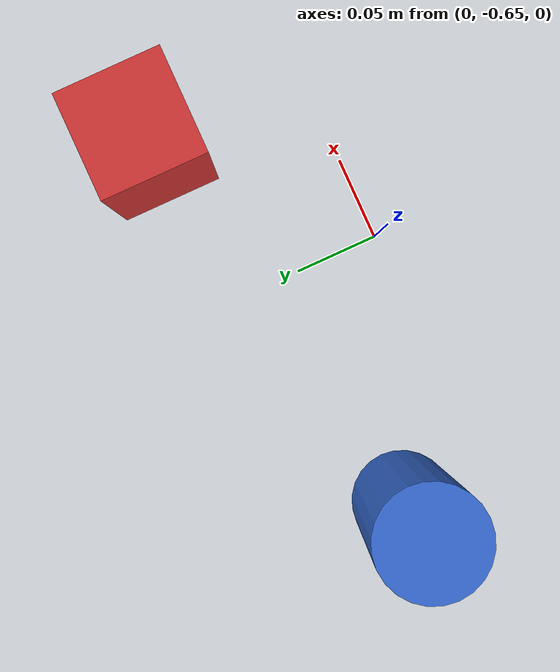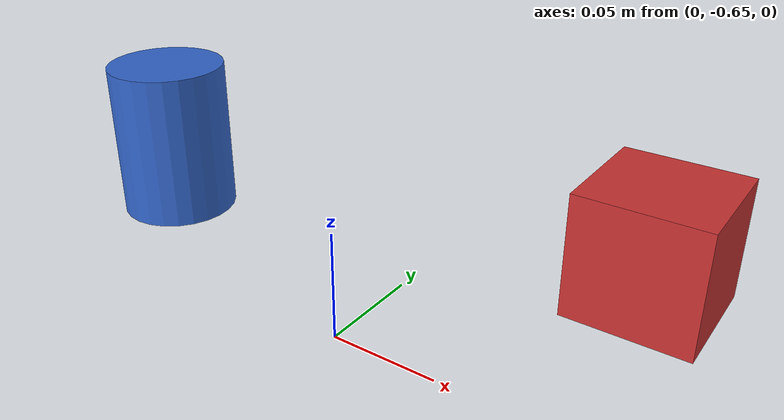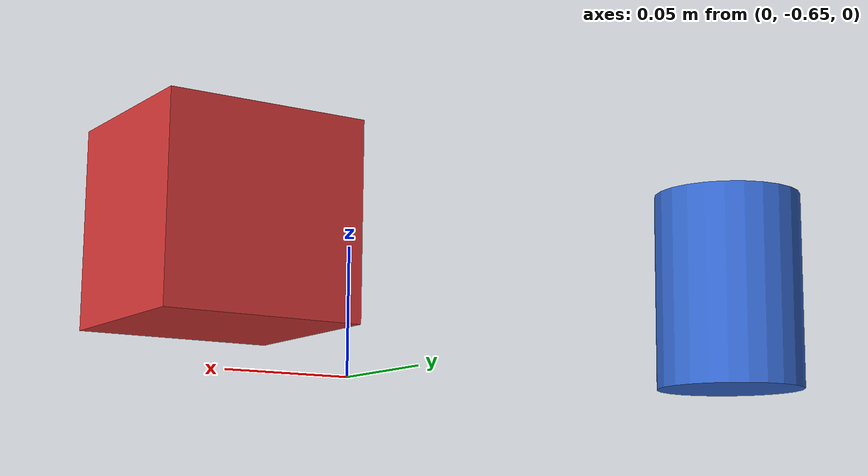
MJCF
<mujoco>
  <worldbody>
    <body name="cube" pos="0.10 -0.55 0.03">
      <freejoint name="cube_free"/>
      <geom type="box" size="0.03 0.03 0.03" mass="0.08" rgba="0.8 0.2 0.2 1" friction="0.8 0.005 0.0005"/>
    </body>
    <body name="can" pos="-0.15 -0.60 0.04">
      <freejoint name="can_free"/>
      <geom type="cylinder" size="0.03 0.04" mass="0.1" rgba="0.2 0.4 0.8 1" friction="0.8 0.005 0.0005"/>
    </body>
  </worldbody>
</mujoco>
